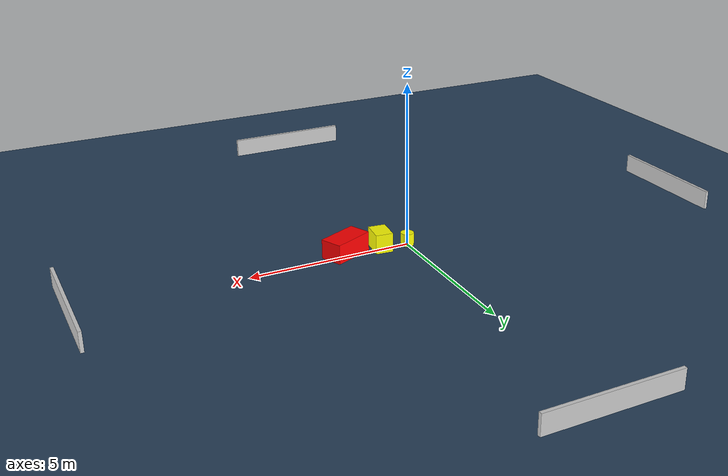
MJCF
<?xml version="1.0" ?>
<mujoco model="generated_environment">
  <option timestep="0.01" integrator="RK4" cone="elliptic"/>
  <default>
    <geom density="1"/>
  </default>
  <asset>
    <texture builtin="gradient" height="3072" name="skybox" rgb1="0.3 0.5 0.7" rgb2="0 0 0" type="skybox" width="512"/>
    <texture builtin="checker" height="300" name="groundplane" rgb1="0.2 0.3 0.4" rgb2="0.1 0.2 0.3" type="2d" width="300"/>
    <material name="groundplane" reflectance="0.2" texrepeat="5 5" texture="groundplane"/>
  </asset>
  <worldbody>
    <light dir="0 0 -1" directional="true" pos="0 0 1.5"/>
    <geom condim="3" friction="0.5 0.005 0.001" material="groundplane" name="floor" pos="0 0 0" size="0 0 0.05" type="plane"/>
    <body name="walls">
      <geom name="wall_1" condim="4" pos="-10.0 0.0 0.3" rgba="0.800000011920929 0.800000011920929 0.800000011920929 1.0" size="0.05 2.0 0.3" type="box"/>
      <geom name="wall_2" condim="4" pos="10.0 0.0 0.3" rgba="0.800000011920929 0.800000011920929 0.800000011920929 1.0" size="0.05 2.0 0.3" type="box"/>
      <geom name="wall_3" condim="4" pos="0.0 -10.0 0.3" rgba="0.800000011920929 0.800000011920929 0.800000011920929 1.0" size="2.0 0.05 0.3" type="box"/>
      <geom name="wall_4" condim="4" pos="0.0 10.0 0.3" rgba="0.800000011920929 0.800000011920929 0.800000011920929 1.0" size="2.0 0.05 0.3" type="box"/>
    </body>
    <body name="robot">
      <joint name="joint_x" type="slide" pos="0 0 0" axis="1 0 0"/>
      <joint name="joint_y" type="slide" pos="0 0 0" axis="0 1 0"/>
      <geom name="robot" type="cylinder" pos="0.0 0.0 0.2" size="0.2 0.2 0.0" mass="5.0" friction="1.0 0.005 0.0001" condim="4" rgba="1.0 1.0 0.0 1.0"/>
    </body>
    <body name="obstacle_1_movable">
      <geom name="obstacle_1_movable" condim="4" pos="0.8390367226659843 -0.11558598315000604 0.3" euler="0 0 353.840611391068" friction="0.0 0.005 0.001" rgba="1.0 1.0 0.0 1.0" size="0.2647458314629232 0.35696586221400184 0.3" type="box" mass="0.1"/>
      <joint type="free"/>
    </body>
    <body name="obstacle_2_static">
      <geom name="obstacle_2_static" condim="4" pos="1.940604841002541 -0.2187173082093346 0.3" euler="0 0 114.17036722726603" friction="0.0 0.005 0.001" rgba="1.0 0.0 0.0 1.0" size="0.3474318494160095 0.6468537695102086 0.3" type="box"/>
    </body>
  </worldbody>
  <actuator>
    <motor name="actuator_x" joint="joint_x" gear="1" ctrlrange="-1 1"/>
    <motor name="actuator_y" joint="joint_y" gear="1" ctrlrange="-1 1"/>
  </actuator>
</mujoco>
